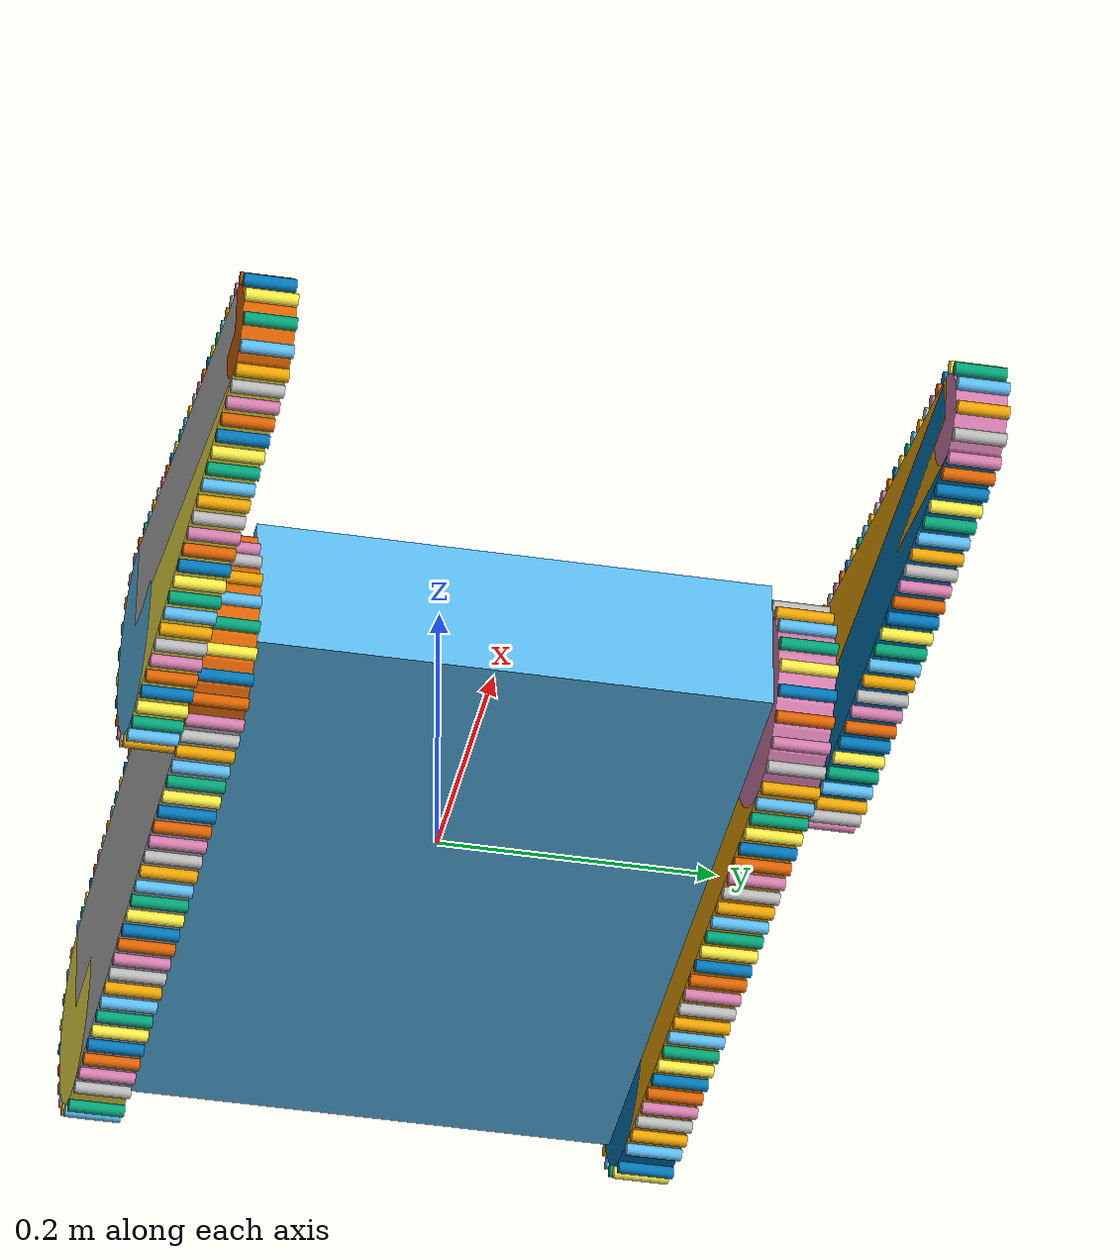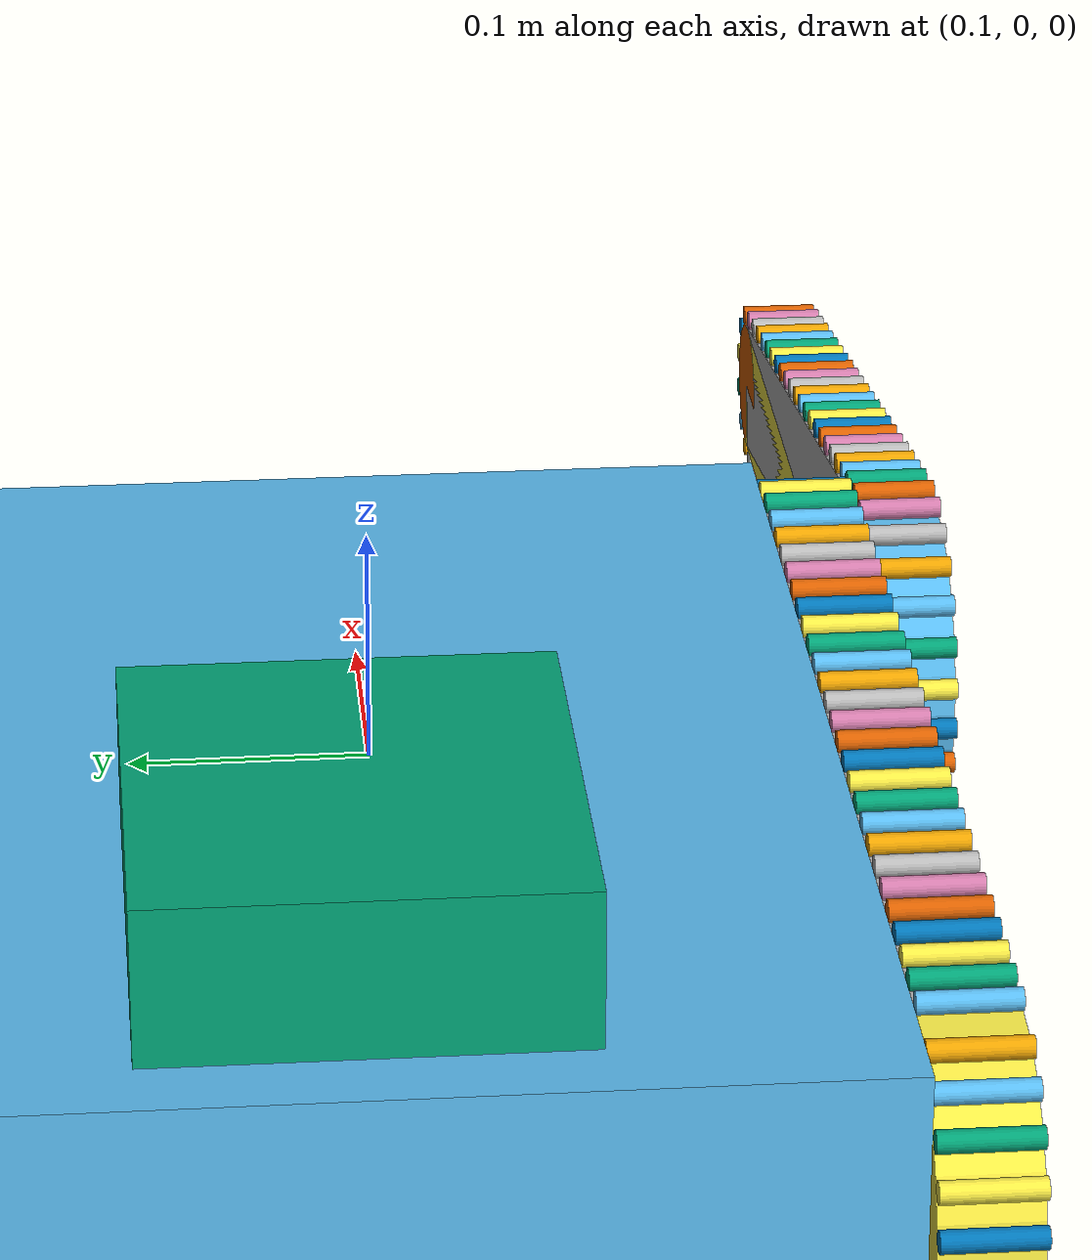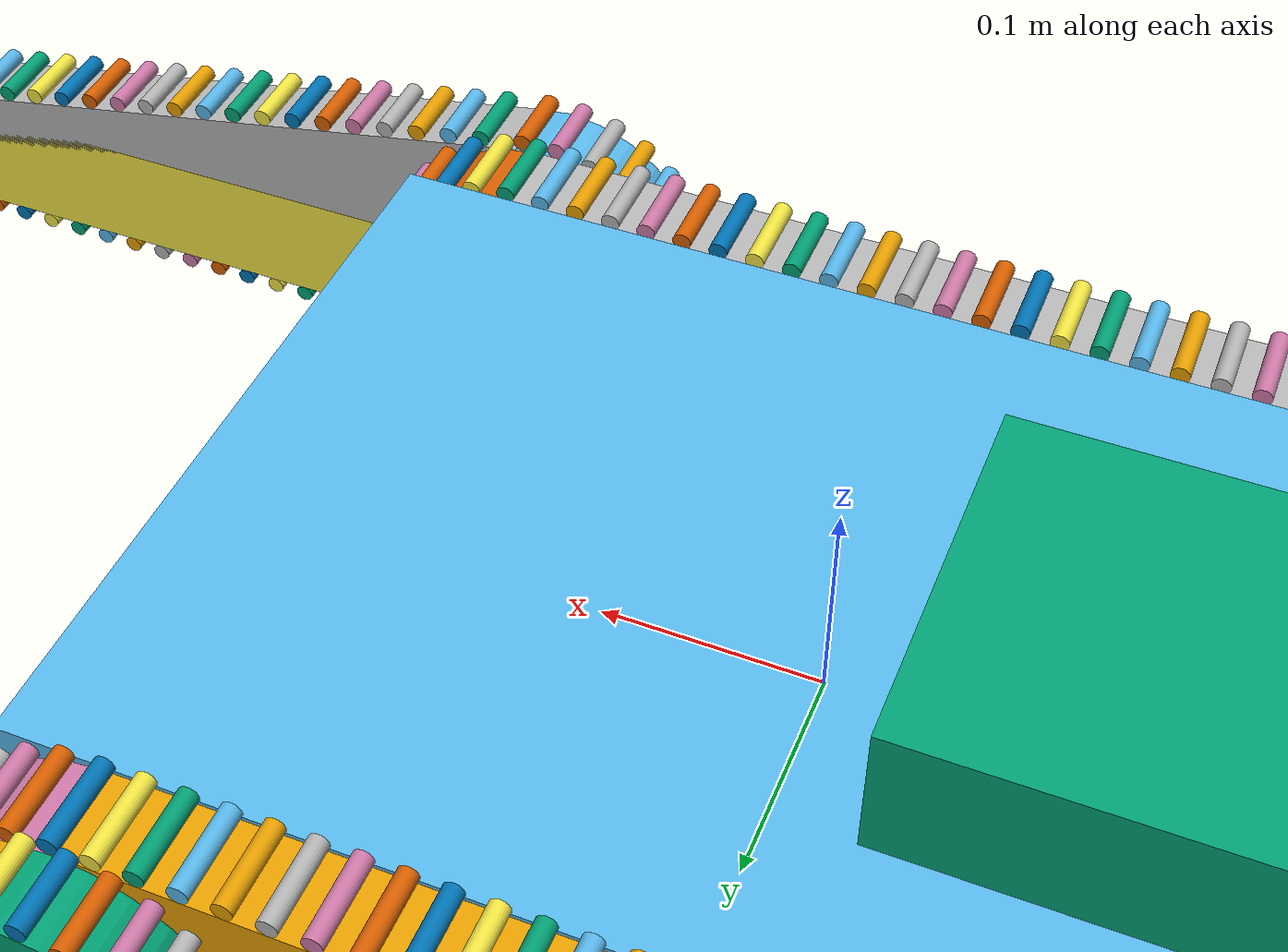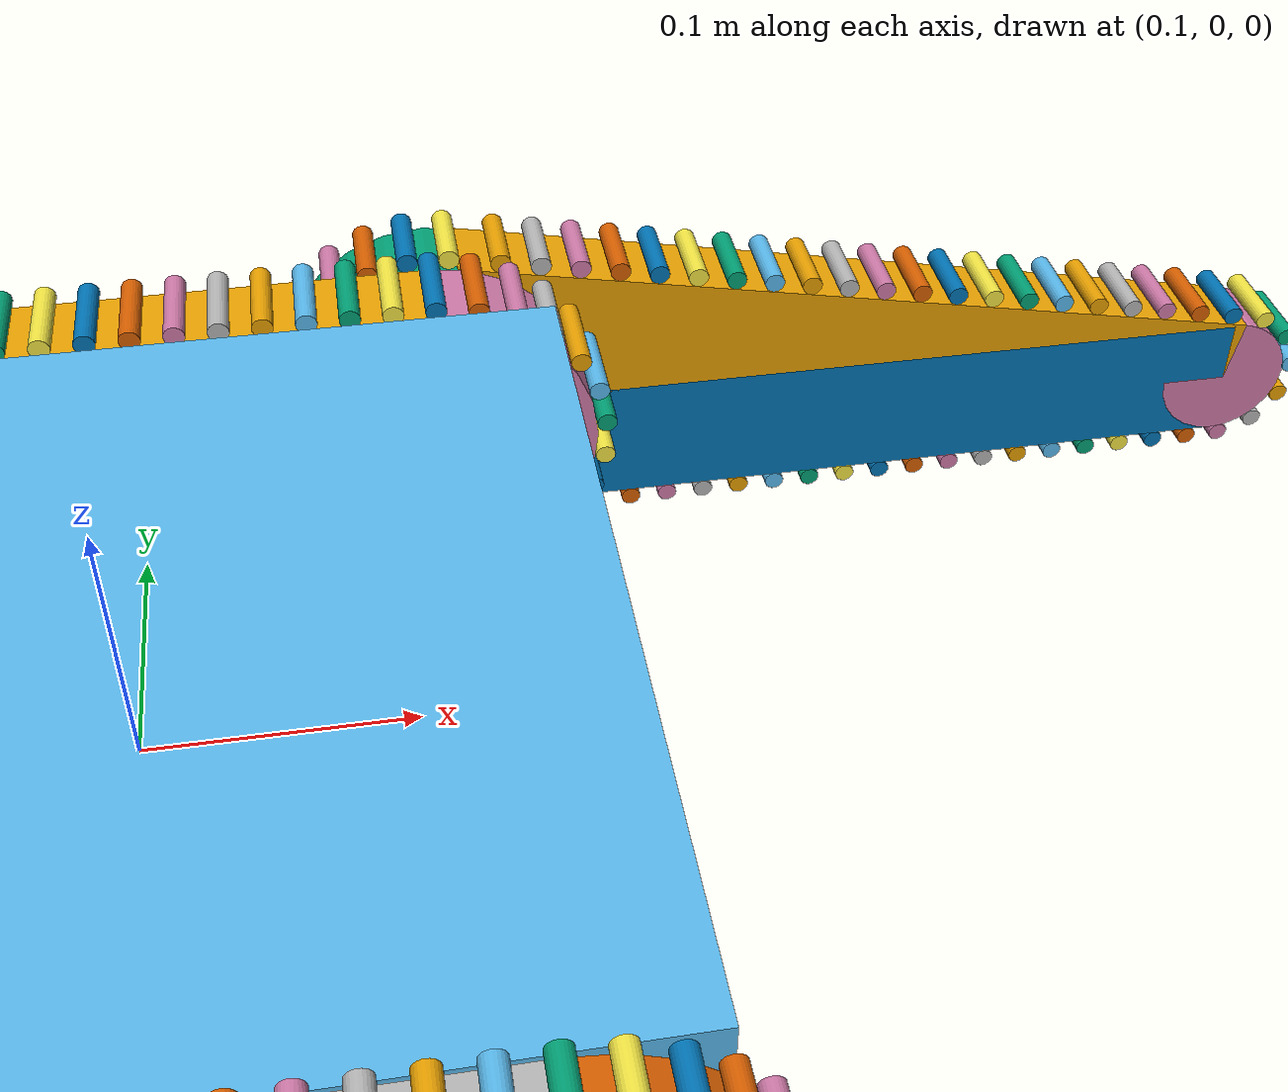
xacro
<?xml version="1.0"?>
<robot name="robot" xmlns:xacro="http://www.ros.org/wiki/xacro">

 <xacro:property name="PI" value="3.14"/>
 <xacro:property name="minus" value="-1"/>

<!-- body property -->
 <xacro:property name="body_len" value="0.55"/>
 <xacro:property name="body_width" value="0.36"/>
 <xacro:property name="body_height" value="0.10"/>
 <xacro:property name="body_mass" value="10.8"/>

<!-- wheel property -->
 <xacro:property name="wheel_radius" value="0.068"/>
 <xacro:property name="wheel_width" value="0.04"/>
 <xacro:property name="wheel_height" value="0.136"/>
 <xacro:property name="wheel_mass" value="0.2"/>

<!-- track property -->
 <xacro:property name="track_len" value="0.45"/>
 <xacro:property name="track_width" value="0.04"/>
 <xacro:property name="track_height" value="0.136"/>
 <xacro:property name="track_mass" value="0.2"/>

<!-- black box property -->
 <xacro:property name="box_len" value="0.2"/>
 <xacro:property name="box_width" value="0.17"/>
 <xacro:property name="box_height" value="0.064"/>
 <xacro:property name="box_mass" value="0.168"/>

<!-- track wheel property -->
 <xacro:property name="track_wheel_radius" value="0.0045"/>
 <xacro:property name="track_wheel_width" value="0.04"/>
 <xacro:property name="track_wheel_height" value="0.009"/>
 <xacro:property name="track_wheel_mass" value="0.0185"/>

<!-- wheel1 property -->
 <xacro:property name="wheel1_width" value="0.035"/>
 <xacro:property name="wheel1_mass" value="0.15"/>

<!-- track1 property -->
 <xacro:property name="track1_len" value="0.39"/>
 <xacro:property name="track1_width" value="0.035"/>
 <xacro:property name="track1_height" value="0.061"/>
 <xacro:property name="track1_mass" value="0.1"/>

<!-- wheel2 property -->
 <xacro:property name="wheel2_radius" value="0.031"/>
 <xacro:property name="wheel2_mass" value="0.05"/>
 <xacro:property name="wheel2_diam" value="0.062"/>

<!-- wheel's inertia-->
 <xacro:macro name="cylinder_inertia" params ="m r h">
  <inertial>
   <mass value="${m}"/>
   <inertia ixx="${m*(3*r*r+h*h)/12}"  ixy="0.0" ixz="0.0"
            iyy="${m*r*r/2}"  iyz= "0.0"
            izz="${m*(3*r*r+h*h)/12}"/>
   </inertial>
 </xacro:macro>

<!-- box inertia -->

 <xacro:macro name="box_inertia" params ="m a b c">
  <inertial>
   <mass value="${m}"/>
   <inertia ixx="${m*(a*a+b*b)/12}"  ixy="0.0" ixz="0.0"
            iyy="${m*(b*b+c*c)/12}"  iyz= "0.0"
            izz="${m*(b*b+c*c)/12}"/>
   </inertial>
</xacro:macro>

 <xacro:macro name= "inertial_matrix" params="mass">
  <inertial>
    <mass value="${mass}"/>
      <inertia ixx="1.0" ixy="0.0"
               iyy="1.0" iyz="0.0"
               izz="1.0" ixz="0.0"/>
   </inertial>
 </xacro:macro>

  <link name="base_link">
    <visual>
        <origin xyz="0 0 0" rpy="0 0 0" />
        <geometry>
            <box size="0.001 0.001 0.001" />
        </geometry>
    </visual>
  </link>

 <link name="body">
	<collision>
		<geometry>
			<box size="${body_len} ${body_width} ${body_height}"/>
		</geometry>
	</collision>
	<visual>
		<geometry>
			<box size="${body_len} ${body_width} ${body_height}"/>
		</geometry>
	</visual>
	<xacro:box_inertia m="${body_mass}" a="${body_width}" b="${body_height}" c="${body_len}"/>
 </link>

 <joint name="body_joint" type="fixed">
	<parent link="base_link"/>
	<child link="body"/>
	<origin xyz="0 0 0" rpy="0 0 0"/>
 </joint>

 <link name= "box">
	<visual>
		<origin rpy= "0 0 0" xyz= "-0.1 0 0"/>
		<geometry>
			<box size="${box_len} ${box_width} ${box_height}"/>
		</geometry>
	</visual>
	<collision>
		<origin rpy= "0 0 0" xyz= "-0.1 0 0"/>
		<geometry>
			<box size="${box_len} ${box_width} ${box_height}"/>
		</geometry>
	</collision>
	<xacro:box_inertia m="${box_mass}" a="${box_width}" b="${box_height}" c="${box_len}"/>
 </link>

 <joint name="box_joint" type="fixed">
	<parent link="body"/>
	<child link="box"/>
	<origin xyz="-0.045 0.02 0.082" rpy="0 0 0"/>
 </joint>

<xacro:macro name="track_wheel" params= "name_link x y z roll">
 <link name= "${name_link}">
	<visual>
		<origin rpy= "${roll} 0 0" xyz= "0 0 0"/>
		<geometry>
			<cylinder length="${track_wheel_width}" radius= "${track_wheel_radius}"/>
		</geometry>
	</visual>
	<collision>
		<origin rpy= "${roll} 0 0" xyz= "0 0 0"/>
		<geometry>
			<cylinder length="${track_wheel_width}" radius= "${track_wheel_radius}"/>
		</geometry>
	</collision>
  	<inertial>
    		<mass value="${track_wheel_mass}"/>
      		<inertia ixx="0.0002" ixy="0.0"
               		 iyy="0.0002" iyz="0.0"
               		 izz="0.0002" ixz="0.0"/>
   		</inertial>
 </link>

 <joint name="${name_link}_joint" type="continuous">
	<parent link="body"/>
	<child link="${name_link}"/>
	<origin xyz="${x} ${y} ${z}" rpy="0 0 0"/>
	<axis xyz="0 1 0"/>
 </joint>

 <gazebo reference ="${name_link}">
    <mu1 value="200.0"/>
    <mu2 value="100.0"/>
    <kp value="10000000.0"/>
    <kd value= "1.0"/>
 </gazebo>

 <transmission name="${name_link}_trans">
	<type>transmission_interface/SimpleTransmission</type>
	<actuator name="${name_link}_motor">
		<mechanicalReduction>1</mechanicalReduction>
	</actuator>
	<joint name="${name_link}_joint">
		<hardwareInterface>hardware_interface/VelocityJointInterface</hardwareInterface>
	</joint>
 </transmission>
</xacro:macro>

<xacro:macro name="wheel" params= "prefix suffix X Y Z">
 <link name= "${prefix}_${suffix}_wheel">
	<visual>
		<origin rpy= "${PI/2} 0 0" xyz= "0 0 0"/>
		<geometry>
			<cylinder length="${wheel_width}" radius= "${wheel_radius}"/>
		</geometry>
	</visual>
	<collision>
		<origin rpy= "${PI/2} 0 0" xyz= "0 0 0"/>
		<geometry>
			<cylinder length="${wheel_width}" radius= "${wheel_radius}"/>
		</geometry>
	</collision>
	<xacro:cylinder_inertia m="${wheel_mass}" r="${wheel_radius}" h="${wheel_width}"/>
 </link>

 <joint name="${prefix}_${suffix}_wheel_joint" type="fixed">
	<parent link="body"/>
	<child link="${prefix}_${suffix}_wheel"/>
	<origin xyz="${0.225*X} ${(body_width/2 + wheel_width/2)*Y} ${0.02*Z}" rpy="0 0 0"/>
	<axis xyz="0 1 0"/>
 </joint>

 <gazebo reference ="${prefix}_${suffix}_wheel">
    <selfCollide>false</selfCollide>
 </gazebo>
</xacro:macro>

<xacro:macro name="track" params= "prefix Y">
 <link name= "${prefix}_track">
	<visual>
		<origin rpy= "0 0 0" xyz= "0 ${(track_width/2)*Y} 0"/>
		<geometry>
			<box size="${track_len} ${track_width} ${track_height}"/>
		</geometry>
	</visual>
	<collision>
		<origin rpy= "0 0 0" xyz= "0 ${(track_width/2)*Y} 0"/>
		<geometry>
			<box size="${track_len} ${track_width} ${track_height}"/>
		</geometry>
	</collision>
	<xacro:box_inertia m="${track_mass}" a="${track_width}" b="${track_height}" c="${track_len}"/>
 </link>

 <joint name="${prefix}_track_joint" type="fixed">
	<parent link="body"/>
	<child link="${prefix}_track"/>
	<origin xyz="0 ${(body_width/2)*Y} -0.02" rpy="0 0 0"/>
 </joint>

 <gazebo reference ="${prefix}_track">
    <selfCollide>false</selfCollide>
 </gazebo>
</xacro:macro>

<xacro:macro name="wheel1" params= "prefix Y">
 <link name= "${prefix}_wheel1">
	<visual>
		<origin rpy= "${PI/2} 0 0" xyz= "0 0 0"/>
		<geometry>
			<cylinder length="${wheel1_width}" radius= "${wheel_radius}"/>
		</geometry>
	</visual>
	<collision>
		<origin rpy= "${PI/2} 0 0" xyz= "0 0 0"/>
		<geometry>
			<cylinder length="${wheel1_width}" radius= "${wheel_radius}"/>
		</geometry>
	</collision>
	<xacro:cylinder_inertia m="${wheel1_mass}" r="${wheel_radius}" h="${wheel1_width}"/>
 </link>

 <joint name="${prefix}_wheel1_joint" type="continuous">
	<parent link="body"/>
	<child link="${prefix}_wheel1"/>
	<origin xyz="0.225 ${((body_width/2) + wheel_width + (wheel1_width/2))*Y} -0.02" rpy="0 0 0"/>
	<axis xyz="0 1 0"/>
	<limit effort="30" velocity="1.0"/>
	<dynamics damping="0.0" friction="0.0"/>
 </joint>

 <transmission name="${prefix}_wheel1_trans">
	<type>transmission_interface/SimpleTransmission</type>
	<actuator name="${prefix}_wheel1_motor">
		<mechanicalReduction>1</mechanicalReduction>
	</actuator>
	<joint name="${prefix}_wheel1_joint">
		<hardwareInterface>hardware_interface/PositionJointInterface</hardwareInterface>
	</joint>
 </transmission>
<gazebo reference ="${prefix}_wheel1">
    <self_collide>false</self_collide>
</gazebo>
</xacro:macro>

<xacro:macro name="track1" params= "prefix Z">
 <link name= "${prefix}_track1">
	<visual>
		<origin rpy= "0 0 0" xyz= "${track1_len/2} 0 ${((wheel_height-track1_height)/2)*Z}"/>
		<geometry>
			<box size="${track1_len} ${track1_width} ${track1_height}"/>
		</geometry>
	</visual>
	<collision>
		<origin rpy= "0 0 0" xyz= "${track1_len/2} 0 ${((wheel_height-track1_height)/2)*Z}"/>
		<geometry>
			<box size="${track1_len} ${track1_width} ${track1_height}"/>
		</geometry>
	</collision>
	<xacro:box_inertia m="${track1_mass}" a="${track1_width}" b="${track1_height}" c="${track1_len}"/>
 </link>

 <joint name="${prefix}_track1_joint" type="fixed">
	<parent link="${prefix}_wheel1"/>
	<child link="${prefix}_track1"/>
	<origin xyz="0 0 0" rpy="0 0 0"/>
	<dynamics damping="0.0" friction="0.0"/>
 </joint>

<gazebo reference ="${prefix}_track1">
    <self_collide>false</self_collide>
</gazebo>
</xacro:macro>

<xacro:macro name="wheel2" params= "prefix Z">
 <link name= "${prefix}_wheel2">
	<visual>
		<origin rpy= "${PI/2} 0 0" xyz= "0 0 0"/>
		<geometry>
			<cylinder length="${track1_width}" radius= "${wheel2_radius}"/>
		</geometry>
	</visual>
	<collision>
		<origin rpy= "${PI/2} 0 0" xyz= "0 0 0"/>
		<geometry>
			<cylinder length="${track1_width}" radius= "${wheel2_radius}"/>
		</geometry>
	</collision>
	<xacro:cylinder_inertia m="${wheel2_mass}" r="${wheel2_radius}" h="${track1_width}"/>
 </link>

 <joint name="${prefix}_wheel2_joint" type="fixed">
	<parent link="${prefix}_track1"/>
	<child link="${prefix}_wheel2"/>
	<origin xyz="${track1_len} 0 ${((wheel_height-track1_height-0.001)/2)*Z}" rpy="0 0 0"/>
	<axis xyz="0 1 0"/>
	<dynamics damping="0.0" friction="0.0"/>
 </joint>

<gazebo reference ="${prefix}_wheel2">
    <self_collide>false</self_collide>
</gazebo>
</xacro:macro>

<xacro:macro name="track2" params= "prefix">
 <link name= "${prefix}_track2">
	<visual>
		<origin rpy= "0 0 0" xyz= "${track1_len/2} 0 ${wheel_radius-(wheel2_diam/2)}"/>
		<geometry>
			<box size="${track1_len} ${track1_width} ${wheel2_diam}"/>
		</geometry>
	</visual>
	<collision>
		<origin rpy= "0 0 0" xyz= "${track1_len/2} 0 ${wheel_radius-(wheel2_diam/2)}"/>
		<geometry>
			<box size="${track1_len} ${track1_width} ${wheel2_diam}"/>
		</geometry>
	</collision>
	<xacro:box_inertia m="${track1_mass}" a="${track1_width}" b="${track1_height}" c="${track1_len}"/>
 </link>

 <joint name="${prefix}_track2_joint" type="fixed">
	<parent link="${prefix}_wheel1"/>
	<child link="${prefix}_track2"/>
	<origin xyz="0 0 0" rpy="0 ${PI/16.6} 0"/>
	<dynamics damping="0.0" friction="0.0"/>
 </joint>
<gazebo reference ="${prefix}_track2">
    <self_collide>false</self_collide>
</gazebo>
</xacro:macro>

<xacro:macro name="aux_track_wheel" params= "aux_name_link prefix x z roll">
 <link name= "${aux_name_link}">
	<visual>
		<origin rpy= "${roll} 0 0" xyz= "0 0 0"/>
		<geometry>
			<cylinder length="${wheel1_width}" radius= "${track_wheel_radius}"/>
		</geometry>
	</visual>
	<collision>
		<origin rpy= "${roll} 0 0" xyz= "0 0 0"/>
		<geometry>
			<cylinder length="${wheel1_width}" radius= "${track_wheel_radius}"/>
		</geometry>
	</collision>
  	<inertial>
    		<mass value="${track_wheel_mass}"/>
      		<inertia ixx="0.0002" ixy="0.0"
               		 iyy="0.0002" iyz="0.0"
               		 izz="0.0002" ixz="0.0"/>
   		</inertial>
 </link>

 <joint name="${aux_name_link}_joint" type="continuous">
	<parent link="${prefix}_wheel1"/>
	<child link="${aux_name_link}"/>
	<origin xyz="${x} 0 ${z}" rpy="0 0 0"/>
	<axis xyz="0 1 0"/>
 </joint>

 <gazebo reference ="${aux_name_link}">
    <mu1 value="200.0"/>
    <mu2 value="100.0"/>
    <kp value="10000000.0"/>
    <kd value= "1.0"/>
 </gazebo>

 <transmission name="${aux_name_link}_trans">
	<type>transmission_interface/SimpleTransmission</type>
	<actuator name="${aux_name_link}_motor">
		<mechanicalReduction>1</mechanicalReduction>
	</actuator>
	<joint name="${aux_name_link}_joint">
		<hardwareInterface>hardware_interface/VelocityJointInterface</hardwareInterface>
	</joint>
 </transmission>
</xacro:macro>

<xacro:wheel prefix="right" suffix="back" X="-1" Y="-1" Z="-1"/>
<xacro:wheel prefix="left" suffix="back" X="-1" Y="1" Z="-1"/>
<xacro:wheel prefix="right" suffix="front" X="1" Y="-1" Z="-1"/>
<xacro:wheel prefix="left" suffix="front" X="1" Y="1" Z="-1"/>
<xacro:track prefix="right" Y="-1"/>
<xacro:track prefix="left" Y="1"/>
<xacro:wheel1 prefix="right" Y="-1"/>
<xacro:wheel1 prefix="left" Y="1"/>
<xacro:track1 prefix="right" Z="-1"/>
<xacro:track1 prefix="left" Z="-1"/>
<xacro:wheel2 prefix="right" Z="-1"/>
<xacro:wheel2 prefix="left" Z="-1"/>
<xacro:track2 prefix="right"/>
<xacro:track2 prefix="left"/>

 <gazebo>
 	<plugin name="gazebo_ros_control" filename= "libgazebo_ros_control.so">
   		<robotNamespace>/</robotNamespace>
  	</plugin>
 </gazebo>

	<xacro:include filename="$(find second_robot)/world/tracks.xacro"/>
	<xacro:include filename="$(find second_robot)/world/aux_tracks.xacro"/>

</robot>
